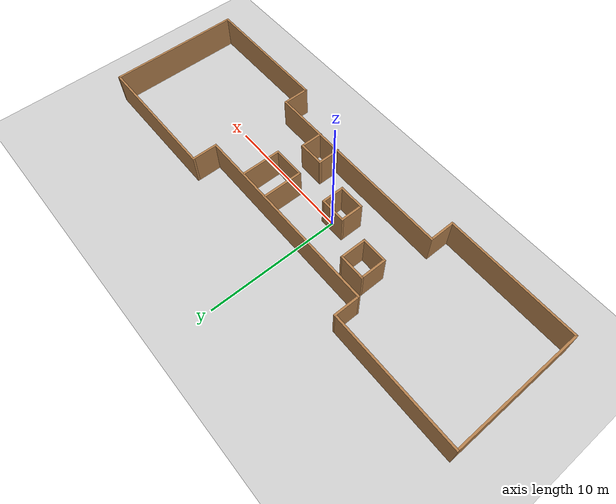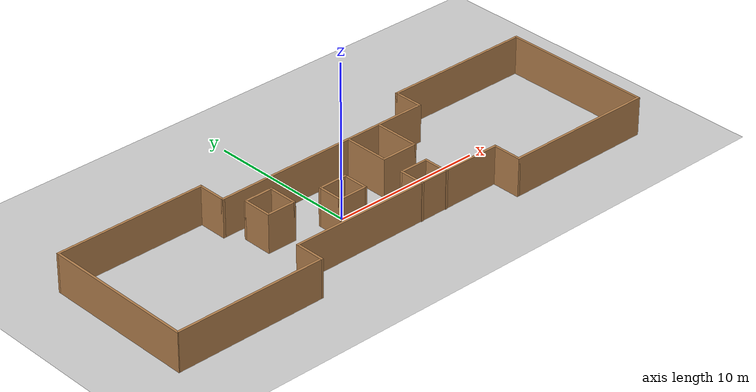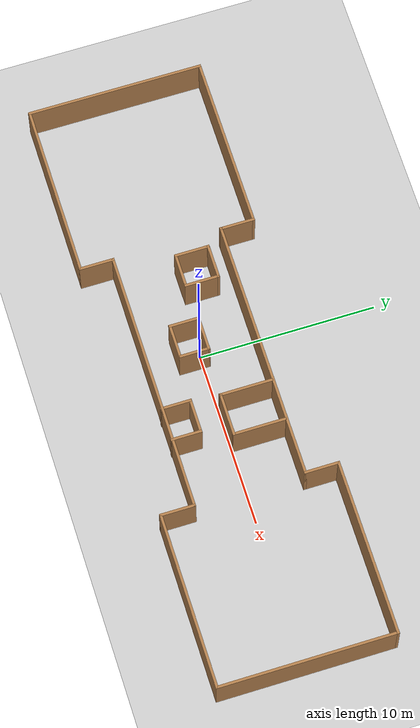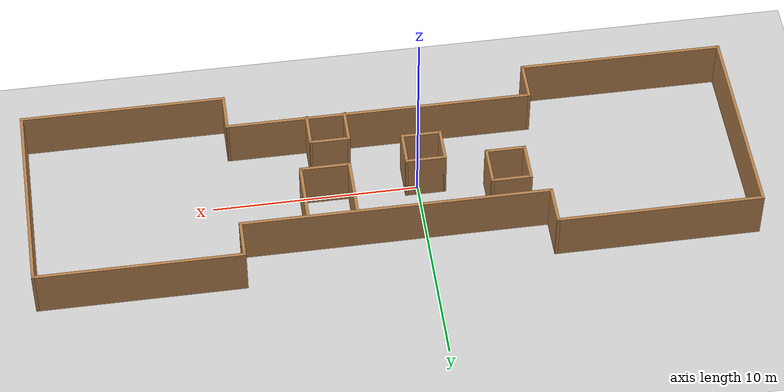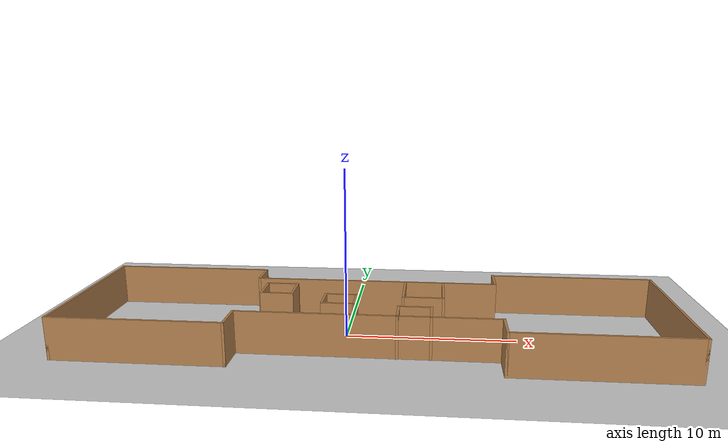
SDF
<sdf version="1.7">
 <world name="default">
  <light name="sun" type="directional">
   <pose>0 0 10 0 -0 0</pose>
   <diffuse>0.8 0.8 0.8 1</diffuse>
   <specular>0.2 0.2 0.2 1</specular>
   <attenuation>
    <range>1000</range>
    <constant>0.9</constant>
    <linear>0.01</linear>
    <quadratic>0.001</quadratic>
   </attenuation>
   <direction>-0.5 0.1 -0.9</direction>
   <spot><inner_angle>0</inner_angle><outer_angle>0</outer_angle><falloff>0</falloff></spot>
  </light>
  <model name="ground_plane">
   <static>1</static>
   <link name="link">
    <collision name="collision">
     <geometry><plane><normal>0 0 1</normal><size>100 100</size></plane></geometry>
     <surface>
      <contact><collide_bitmask>65535</collide_bitmask></contact>
      <friction><ode><mu>100</mu><mu2>50</mu2></ode></friction>
     </surface>
    </collision>
    <visual name="visual">
     <cast_shadows>0</cast_shadows>
     <geometry><plane><normal>0 0 1</normal><size>100 100</size></plane></geometry>
     <material>
      <script><uri>file://media/materials/scripts/gazebo.material</uri><name>Gazebo/Grey</name></script>
     </material>
    </visual>
   </link>
  </model>
  <physics type="ode">
   <max_step_size>0.01</max_step_size>
   <real_time_factor>1</real_time_factor>
   <real_time_update_rate>100</real_time_update_rate>
  </physics>
  <gravity>0 0 -9.8</gravity>
  <magnetic_field>6e-06 2.3e-05 -4.2e-05</magnetic_field>
  <atmosphere type="adiabatic"/>
  <scene><ambient>0.4 0.4 0.4 1</ambient><background>0.7 0.7 0.7 1</background><shadows>1</shadows></scene>
  <spherical_coordinates>
   <surface_model>EARTH_WGS84</surface_model>
   <latitude_deg>0</latitude_deg>
   <longitude_deg>0</longitude_deg>
   <elevation>0</elevation>
   <heading_deg>0</heading_deg>
  </spherical_coordinates>
  <model name="new_world">
   <pose>1.4672 0 0 0 -0 0</pose>
   <link name="Wall_10">
    <collision name="Wall_10_Collision">
     <geometry><box><size>10 0.15 2.5</size></box></geometry>
     <pose>0 0 1.25 0 -0 0</pose>
    </collision>
    <visual name="Wall_10_Visual">
     <pose>0 0 1.25 0 -0 0</pose>
     <geometry><box><size>10 0.15 2.5</size></box></geometry>
     <material>
      <script><uri>file://media/materials/scripts/gazebo.material</uri><name>Gazebo/Wood</name></script>
      <ambient>1 1 1 1</ambient>
     </material>
     <meta><layer>0</layer></meta>
    </visual>
    <pose>12.35 -4.925 0 0 -0 0</pose>
   </link>
   <link name="Wall_11">
    <collision name="Wall_11_Collision">
     <geometry><box><size>10 0.15 2.5</size></box></geometry>
     <pose>0 0 1.25 0 -0 0</pose>
    </collision>
    <visual name="Wall_11_Visual">
     <pose>0 0 1.25 0 -0 0</pose>
     <geometry><box><size>10 0.15 2.5</size></box></geometry>
     <material>
      <script><uri>file://media/materials/scripts/gazebo.material</uri><name>Gazebo/Wood</name></script>
      <ambient>1 1 1 1</ambient>
     </material>
     <meta><layer>0</layer></meta>
    </visual>
    <pose>17.275 -0 0 0 -0 1.5708</pose>
   </link>
   <link name="Wall_12">
    <collision name="Wall_12_Collision">
     <geometry><box><size>10 0.15 2.5</size></box></geometry>
     <pose>0 0 1.25 0 -0 0</pose>
    </collision>
    <visual name="Wall_12_Visual">
     <pose>0 0 1.25 0 -0 0</pose>
     <geometry><box><size>10 0.15 2.5</size></box></geometry>
     <material>
      <script><uri>file://media/materials/scripts/gazebo.material</uri><name>Gazebo/Wood</name></script>
      <ambient>1 1 1 1</ambient>
     </material>
     <meta><layer>0</layer></meta>
    </visual>
    <pose>12.35 4.925 0 0 -0 3.14159</pose>
   </link>
   <link name="Wall_13">
    <collision name="Wall_13_Collision">
     <geometry><box><size>2 0.15 2.5</size></box></geometry>
     <pose>0 0 1.25 0 -0 0</pose>
    </collision>
    <visual name="Wall_13_Visual">
     <pose>0 0 1.25 0 -0 0</pose>
     <geometry><box><size>2 0.15 2.5</size></box></geometry>
     <material>
      <script><uri>file://media/materials/scripts/gazebo.material</uri><name>Gazebo/Wood</name></script>
      <ambient>1 1 1 1</ambient>
     </material>
     <meta><layer>0</layer></meta>
    </visual>
    <pose>7.425 4 0 0 -0 -1.5708</pose>
   </link>
   <link name="Wall_14">
    <collision name="Wall_14_Collision">
     <geometry><box><size>15 0.15 2.5</size></box></geometry>
     <pose>0 0 1.25 0 -0 0</pose>
    </collision>
    <visual name="Wall_14_Visual">
     <pose>0 0 1.25 0 -0 0</pose>
     <geometry><box><size>15 0.15 2.5</size></box></geometry>
     <material>
      <script><uri>file://media/materials/scripts/gazebo.material</uri><name>Gazebo/Wood</name></script>
      <ambient>1 1 1 1</ambient>
     </material>
     <meta><layer>0</layer></meta>
    </visual>
    <pose>0 3.075 0 0 -0 3.14159</pose>
   </link>
   <link name="Wall_15">
    <collision name="Wall_15_Collision">
     <geometry><box><size>2 0.15 2.5</size></box></geometry>
     <pose>0 0 1.25 0 -0 0</pose>
    </collision>
    <visual name="Wall_15_Visual">
     <pose>0 0 1.25 0 -0 0</pose>
     <geometry><box><size>2 0.15 2.5</size></box></geometry>
     <material>
      <script><uri>file://media/materials/scripts/gazebo.material</uri><name>Gazebo/Wood</name></script>
      <ambient>1 1 1 1</ambient>
     </material>
     <meta><layer>0</layer></meta>
    </visual>
    <pose>-7.425 4 0 0 -0 1.5708</pose>
   </link>
   <link name="Wall_17">
    <collision name="Wall_17_Collision">
     <geometry><box><size>2 0.15 2.5</size></box></geometry>
     <pose>0 0 1.25 0 -0 0</pose>
    </collision>
    <visual name="Wall_17_Visual">
     <pose>0 0 1.25 0 -0 0</pose>
     <geometry><box><size>2 0.15 2.5</size></box></geometry>
     <material>
      <script><uri>file://media/materials/scripts/gazebo.material</uri><name>Gazebo/Wood</name></script>
      <ambient>1 1 1 1</ambient>
     </material>
     <meta><layer>0</layer></meta>
    </visual>
    <pose>-6.62046 1.16399 0 0 -0 -1.5708</pose>
   </link>
   <link name="Wall_18">
    <collision name="Wall_18_Collision">
     <geometry><box><size>2 0.15 2.5</size></box></geometry>
     <pose>0 0 1.25 0 -0 0</pose>
    </collision>
    <visual name="Wall_18_Visual">
     <pose>0 0 1.25 0 -0 0</pose>
     <geometry><box><size>2 0.15 2.5</size></box></geometry>
     <material>
      <script><uri>file://media/materials/scripts/gazebo.material</uri><name>Gazebo/Wood</name></script>
      <ambient>1 1 1 1</ambient>
     </material>
     <meta><layer>0</layer></meta>
    </visual>
    <pose>-5.69546 0.238986 0 0 -0 0</pose>
   </link>
   <link name="Wall_19">
    <collision name="Wall_19_Collision">
     <geometry><box><size>2 0.15 2.5</size></box></geometry>
     <pose>0 0 1.25 0 -0 0</pose>
    </collision>
    <visual name="Wall_19_Visual">
     <pose>0 0 1.25 0 -0 0</pose>
     <geometry><box><size>2 0.15 2.5</size></box></geometry>
     <material>
      <script><uri>file://media/materials/scripts/gazebo.material</uri><name>Gazebo/Wood</name></script>
      <ambient>1 1 1 1</ambient>
     </material>
     <meta><layer>0</layer></meta>
    </visual>
    <pose>-4.77046 1.16399 0 0 -0 1.5708</pose>
   </link>
   <link name="Wall_20">
    <collision name="Wall_20_Collision">
     <geometry><box><size>2 0.15 2.5</size></box></geometry>
     <pose>0 0 1.25 0 -0 0</pose>
    </collision>
    <visual name="Wall_20_Visual">
     <pose>0 0 1.25 0 -0 0</pose>
     <geometry><box><size>2 0.15 2.5</size></box></geometry>
     <material>
      <script><uri>file://media/materials/scripts/gazebo.material</uri><name>Gazebo/Wood</name></script>
      <ambient>1 1 1 1</ambient>
     </material>
     <meta><layer>0</layer></meta>
    </visual>
    <pose>-5.69546 2.08899 0 0 -0 3.14159</pose>
   </link>
   <link name="Wall_22">
    <collision name="Wall_22_Collision">
     <geometry><box><size>1.75 0.15 2.5</size></box></geometry>
     <pose>0 0 1.25 0 -0 0</pose>
    </collision>
    <visual name="Wall_22_Visual">
     <pose>0 0 1.25 0 -0 0</pose>
     <geometry><box><size>1.75 0.15 2.5</size></box></geometry>
     <material>
      <script><uri>file://media/materials/scripts/gazebo.material</uri><name>Gazebo/Wood</name></script>
      <ambient>1 1 1 1</ambient>
     </material>
     <meta><layer>0</layer></meta>
    </visual>
    <pose>-2.73854 -0.481008 0 0 -0 -1.5708</pose>
   </link>
   <link name="Wall_23">
    <collision name="Wall_23_Collision">
     <geometry><box><size>2 0.15 2.5</size></box></geometry>
     <pose>0 0 1.25 0 -0 0</pose>
    </collision>
    <visual name="Wall_23_Visual">
     <pose>0 0 1.25 0 -0 0</pose>
     <geometry><box><size>2 0.15 2.5</size></box></geometry>
     <material>
      <script><uri>file://media/materials/scripts/gazebo.material</uri><name>Gazebo/Wood</name></script>
      <ambient>1 1 1 1</ambient>
     </material>
     <meta><layer>0</layer></meta>
    </visual>
    <pose>-1.81354 -1.28101 0 0 -0 0</pose>
   </link>
   <link name="Wall_24">
    <collision name="Wall_24_Collision">
     <geometry><box><size>1.75 0.15 2.5</size></box></geometry>
     <pose>0 0 1.25 0 -0 0</pose>
    </collision>
    <visual name="Wall_24_Visual">
     <pose>0 0 1.25 0 -0 0</pose>
     <geometry><box><size>1.75 0.15 2.5</size></box></geometry>
     <material>
      <script><uri>file://media/materials/scripts/gazebo.material</uri><name>Gazebo/Wood</name></script>
      <ambient>1 1 1 1</ambient>
     </material>
     <meta><layer>0</layer></meta>
    </visual>
    <pose>-0.888538 -0.481008 0 0 -0 1.5708</pose>
   </link>
   <link name="Wall_25">
    <collision name="Wall_25_Collision">
     <geometry><box><size>2 0.15 2.5</size></box></geometry>
     <pose>0 0 1.25 0 -0 0</pose>
    </collision>
    <visual name="Wall_25_Visual">
     <pose>0 0 1.25 0 -0 0</pose>
     <geometry><box><size>2 0.15 2.5</size></box></geometry>
     <material>
      <script><uri>file://media/materials/scripts/gazebo.material</uri><name>Gazebo/Wood</name></script>
      <ambient>1 1 1 1</ambient>
     </material>
     <meta><layer>0</layer></meta>
    </visual>
    <pose>-1.81354 0.318992 0 0 -0 3.14159</pose>
   </link>
   <link name="Wall_27">
    <collision name="Wall_27_Collision">
     <geometry><box><size>3 0.15 2.5</size></box></geometry>
     <pose>0 0 1.25 0 -0 0</pose>
    </collision>
    <visual name="Wall_27_Visual">
     <pose>0 0 1.25 0 -0 0</pose>
     <geometry><box><size>3 0.15 2.5</size></box></geometry>
     <material>
      <script><uri>file://media/materials/scripts/gazebo.material</uri><name>Gazebo/Wood</name></script>
      <ambient>1 1 1 1</ambient>
     </material>
     <meta><layer>0</layer></meta>
    </visual>
    <pose>1.86747 1.54898 0 0 -0 -1.5708</pose>
   </link>
   <link name="Wall_28">
    <collision name="Wall_28_Collision">
     <geometry><box><size>2.5 0.15 2.5</size></box></geometry>
     <pose>0 0 1.25 0 -0 0</pose>
    </collision>
    <visual name="Wall_28_Visual">
     <pose>0 0 1.25 0 -0 0</pose>
     <geometry><box><size>2.5 0.15 2.5</size></box></geometry>
     <material>
      <script><uri>file://media/materials/scripts/gazebo.material</uri><name>Gazebo/Wood</name></script>
      <ambient>1 1 1 1</ambient>
     </material>
     <meta><layer>0</layer></meta>
    </visual>
    <pose>3.04247 0.123983 0 0 -0 0</pose>
   </link>
   <link name="Wall_29">
    <collision name="Wall_29_Collision">
     <geometry><box><size>3 0.15 2.5</size></box></geometry>
     <pose>0 0 1.25 0 -0 0</pose>
    </collision>
    <visual name="Wall_29_Visual">
     <pose>0 0 1.25 0 -0 0</pose>
     <geometry><box><size>3 0.15 2.5</size></box></geometry>
     <material>
      <script><uri>file://media/materials/scripts/gazebo.material</uri><name>Gazebo/Wood</name></script>
      <ambient>1 1 1 1</ambient>
     </material>
     <meta><layer>0</layer></meta>
    </visual>
    <pose>4.21747 1.54898 0 0 -0 1.5708</pose>
   </link>
   <link name="Wall_3">
    <collision name="Wall_3_Collision">
     <geometry><box><size>10 0.15 2.5</size></box></geometry>
     <pose>0 0 1.25 0 -0 0</pose>
    </collision>
    <visual name="Wall_3_Visual">
     <pose>0 0 1.25 0 -0 0</pose>
     <geometry><box><size>10 0.15 2.5</size></box></geometry>
     <material>
      <script><uri>file://media/materials/scripts/gazebo.material</uri><name>Gazebo/Wood</name></script>
      <ambient>1 1 1 1</ambient>
     </material>
     <meta><layer>0</layer></meta>
    </visual>
    <pose>-12.35 4.925 0 0 -0 3.14159</pose>
   </link>
   <link name="Wall_31">
    <collision name="Wall_31_Collision">
     <geometry><box><size>1.75 0.15 2.5</size></box></geometry>
     <pose>0 0 1.25 0 -0 0</pose>
    </collision>
    <visual name="Wall_31_Visual">
     <pose>0 0 1.25 0 -0 0</pose>
     <geometry><box><size>1.75 0.15 2.5</size></box></geometry>
     <material>
      <script><uri>file://media/materials/scripts/gazebo.material</uri><name>Gazebo/Wood</name></script>
      <ambient>1 1 1 1</ambient>
     </material>
     <meta><layer>0</layer></meta>
    </visual>
    <pose>1.68645 -2.31134 0 0 -0 -1.5708</pose>
   </link>
   <link name="Wall_33">
    <collision name="Wall_33_Collision">
     <geometry><box><size>2 0.15 2.5</size></box></geometry>
     <pose>0 0 1.25 0 -0 0</pose>
    </collision>
    <visual name="Wall_33_Visual">
     <pose>0 0 1.25 0 -0 0</pose>
     <geometry><box><size>2 0.15 2.5</size></box></geometry>
     <material>
      <script><uri>file://media/materials/scripts/gazebo.material</uri><name>Gazebo/Wood</name></script>
      <ambient>1 1 1 1</ambient>
     </material>
     <meta><layer>0</layer></meta>
    </visual>
    <pose>2.61145 -1.51134 0 0 -0 0</pose>
   </link>
   <link name="Wall_34">
    <collision name="Wall_34_Collision">
     <geometry><box><size>1.75 0.15 2.5</size></box></geometry>
     <pose>0 0 1.25 0 -0 0</pose>
    </collision>
    <visual name="Wall_34_Visual">
     <pose>0 0 1.25 0 -0 0</pose>
     <geometry><box><size>1.75 0.15 2.5</size></box></geometry>
     <material>
      <script><uri>file://media/materials/scripts/gazebo.material</uri><name>Gazebo/Wood</name></script>
      <ambient>1 1 1 1</ambient>
     </material>
     <meta><layer>0</layer></meta>
    </visual>
    <pose>3.53645 -2.31134 0 0 -0 -1.5708</pose>
   </link>
   <link name="Wall_4">
    <collision name="Wall_4_Collision">
     <geometry><box><size>10 0.15 2.5</size></box></geometry>
     <pose>0 0 1.25 0 -0 0</pose>
    </collision>
    <visual name="Wall_4_Visual">
     <pose>0 0 1.25 0 -0 0</pose>
     <geometry><box><size>10 0.15 2.5</size></box></geometry>
     <material>
      <script><uri>file://media/materials/scripts/gazebo.material</uri><name>Gazebo/Wood</name></script>
      <ambient>1 1 1 1</ambient>
     </material>
     <meta><layer>0</layer></meta>
    </visual>
    <pose>-17.275 -0 0 0 -0 -1.5708</pose>
   </link>
   <link name="Wall_5">
    <collision name="Wall_5_Collision">
     <geometry><box><size>10 0.15 2.5</size></box></geometry>
     <pose>0 0 1.25 0 -0 0</pose>
    </collision>
    <visual name="Wall_5_Visual">
     <pose>0 0 1.25 0 -0 0</pose>
     <geometry><box><size>10 0.15 2.5</size></box></geometry>
     <material>
      <script><uri>file://media/materials/scripts/gazebo.material</uri><name>Gazebo/Wood</name></script>
      <ambient>1 1 1 1</ambient>
     </material>
     <meta><layer>0</layer></meta>
    </visual>
    <pose>-12.35 -4.925 0 0 -0 0</pose>
   </link>
   <link name="Wall_6">
    <collision name="Wall_6_Collision">
     <geometry><box><size>2 0.15 2.5</size></box></geometry>
     <pose>0 0 1.25 0 -0 0</pose>
    </collision>
    <visual name="Wall_6_Visual">
     <pose>0 0 1.25 0 -0 0</pose>
     <geometry><box><size>2 0.15 2.5</size></box></geometry>
     <material>
      <script><uri>file://media/materials/scripts/gazebo.material</uri><name>Gazebo/Wood</name></script>
      <ambient>1 1 1 1</ambient>
     </material>
     <meta><layer>0</layer></meta>
    </visual>
    <pose>-7.425 -4 0 0 -0 1.5708</pose>
   </link>
   <link name="Wall_7">
    <collision name="Wall_7_Collision">
     <geometry><box><size>15 0.15 2.5</size></box></geometry>
     <pose>0 0 1.25 0 -0 0</pose>
    </collision>
    <visual name="Wall_7_Visual">
     <pose>0 0 1.25 0 -0 0</pose>
     <geometry><box><size>15 0.15 2.5</size></box></geometry>
     <material>
      <script><uri>file://media/materials/scripts/gazebo.material</uri><name>Gazebo/Wood</name></script>
      <ambient>1 1 1 1</ambient>
     </material>
     <meta><layer>0</layer></meta>
    </visual>
    <pose>0 -3.075 0 0 -0 0</pose>
   </link>
   <link name="Wall_8">
    <collision name="Wall_8_Collision">
     <geometry><box><size>2 0.15 2.5</size></box></geometry>
     <pose>0 0 1.25 0 -0 0</pose>
    </collision>
    <visual name="Wall_8_Visual">
     <pose>0 0 1.25 0 -0 0</pose>
     <geometry><box><size>2 0.15 2.5</size></box></geometry>
     <material>
      <script><uri>file://media/materials/scripts/gazebo.material</uri><name>Gazebo/Wood</name></script>
      <ambient>1 1 1 1</ambient>
     </material>
     <meta><layer>0</layer></meta>
    </visual>
    <pose>7.425 -4 0 0 -0 -1.5708</pose>
   </link>
   <static>1</static>
  </model>
 </world>
</sdf>
